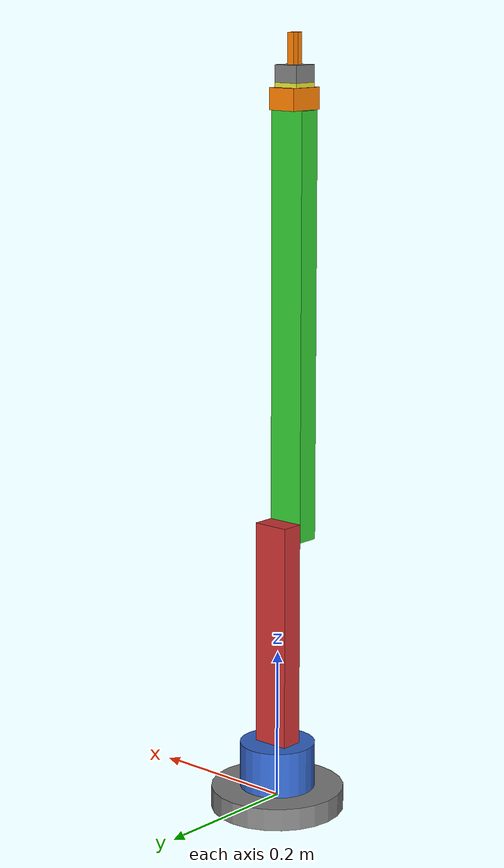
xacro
<?xml version="1.0"?>
<robot xmlns:xacro="http://www.ros.org/wiki/xacro" name="arm">
    <xacro:arg name="initial_positions_file" default="initial_positions.yaml" />
    <xacro:arg name="use_mock_hardware" default="true" />
    <xacro:arg name="hardware_plugin" default="mock_components/GenericSystem" />
    <xacro:arg name="port" default="/dev/ttyUSB0" />
    <xacro:arg name="baud_rate" default="1000000" />

    <!-- Import arm urdf file -->
    <xacro:include filename="$(find payloads)/config/arm_model.urdf" />

    <!-- Import control_xacro -->
    <xacro:include filename="arm.ros2_control.xacro" />

    <xacro:arm_ros2_control name="DynamixelServos" initial_positions_file="$(arg initial_positions_file)" use_mock_hardware="$(arg use_mock_hardware)" hardware_plugin="$(arg hardware_plugin)" port="$(arg port)" baud_rate="$(arg baud_rate)"/>

</robot>

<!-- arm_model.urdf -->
<robot name="arm">

  <material name="gray">   <color rgba="0.5 0.5 0.5 1.0"/></material>
  <material name="blue">   <color rgba="0.2 0.4 0.8 1.0"/></material>
  <material name="red">    <color rgba="0.8 0.2 0.2 1.0"/></material>
  <material name="green">  <color rgba="0.2 0.8 0.2 1.0"/></material>
  <material name="orange"> <color rgba="1.0 0.5 0.0 1.0"/></material>
  <material name="yellow"> <color rgba="0.9 0.9 0.2 1.0"/></material>
  <material name="purple"> <color rgba="0.6 0.2 0.8 1.0"/></material>

  <link name="plate">
    <visual>
      <geometry><cylinder length="0.029471" radius="0.0885"/></geometry>
      <material name="gray"/>
    </visual>
    <collision>
      <geometry><cylinder length="0.029471" radius="0.0885"/></geometry>
    </collision>
  </link>

  <link name="shoulder_base">
    <visual>
      <geometry><cylinder length="0.061043" radius="0.05"/></geometry>
      <origin rpy="0 0 0" xyz="0 0 0.0305215"/>
      <material name="blue"/>
    </visual>
    <collision>
      <geometry><cylinder length="0.061043" radius="0.05"/></geometry>
      <origin rpy="0 0 0" xyz="0 0 0.0305215"/>
    </collision>
    <inertial>
      <mass value="0.8"/>
      <origin xyz="0 0 0.0305215" rpy="0 0 0"/>
      <inertia ixx="0.002" ixy="0.0" ixz="0.0" iyy="0.002" iyz="0.0" izz="0.001"/>
    </inertial>
  </link>

  <joint name="shoulder_pan" type="revolute">
    <parent link="plate"/>
    <child link="shoulder_base"/>
    <origin xyz="0 0 0.0147355" rpy="0 0 0"/>
    <axis xyz="0 0 1"/>
    <limit lower="-31.4159" upper="31.4159" effort="10.0" velocity="3.0"/>
    <dynamics damping="0.1" friction="0.05"/>
  </joint>

  <link name="shoulder_arm">
    <visual>
      <geometry><box size="0.05 0.03 0.3"/></geometry>
      <origin xyz="0 0 0.15" rpy="0 0 0"/>
      <material name="red"/>
    </visual>
    <collision>
      <geometry><box size="0.05 0.03 0.3"/></geometry>
      <origin xyz="0 0 0.15" rpy="0 0 0"/>
    </collision>
    <inertial>
      <mass value="0.6"/>
      <origin xyz="0 0 0.15" rpy="0 0 0"/>
      <inertia ixx="0.0046" ixy="0.0" ixz="0.0" iyy="0.0047" iyz="0.0" izz="0.0003"/>
    </inertial>
  </link>

  <joint name="shoulder_tilt" type="revolute">
    <parent link="shoulder_base"/>
    <child link="shoulder_arm"/>
    <origin xyz="0 0 0.061043" rpy="0 0 0"/>
    <axis xyz="0 1 0"/>
    <limit lower="-1.57" upper="1.57" effort="10.0" velocity="2.0"/>
    <dynamics damping="0.1" friction="0.05"/>
  </joint>

  <link name="forearm">
    <visual>
      <geometry><box size="0.05 0.03 0.558"/></geometry>
      <origin xyz="0 0 0.279" rpy="0 0 0"/>
      <material name="green"/>
    </visual>
    <collision>
      <geometry><box size="0.05 0.03 0.558"/></geometry>
      <origin xyz="0 0 0.279" rpy="0 0 0"/>
    </collision>
    <inertial>
      <mass value="0.5"/>
      <origin xyz="0 0 0.279" rpy="0 0 0"/>
      <inertia ixx="0.013" ixy="0.0" ixz="0.0" iyy="0.013" iyz="0.0" izz="0.0002"/>
    </inertial>
  </link>

  <joint name="elbow" type="revolute">
    <parent link="shoulder_arm"/>
    <child link="forearm"/>
    <origin xyz="0 -0.03 0.275" rpy="0 0 0"/>
    <axis xyz="0 1 0"/>
    <limit lower="-3.14159" upper="3.14159" effort="8.0" velocity="2.0"/>
    <dynamics damping="0.1" friction="0.05"/>
  </joint>

  <link name="forearm_tip">
    <visual>
      <geometry><sphere radius="0.01"/></geometry>
      <material name="purple"/>
    </visual>
    <collision>
      <geometry><sphere radius="0.01"/></geometry>
    </collision>
    <inertial>
      <mass value="0.001"/>
      <origin xyz="0 0 0" rpy="0 0 0"/>
      <inertia ixx="0.000001" ixy="0.0" ixz="0.0" iyy="0.000001" iyz="0.0" izz="0.000001"/>
    </inertial>
  </link>

  <joint name="forearm_tip_joint" type="fixed">
    <parent link="forearm"/>
    <child link="forearm_tip"/>
    <origin xyz="0 0 0.558" rpy="0 0 0"/>
  </joint>

  <link name="wrist_pitch_link">
    <visual>
      <geometry><box size="0.04 0.05 0.028"/></geometry>
      <origin xyz="0 0 0.014" rpy="0 0 0"/>
      <material name="orange"/>
    </visual>
    <collision>
      <geometry><box size="0.04 0.05 0.028"/></geometry>
      <origin xyz="0 0 0.014" rpy="0 0 0"/>
    </collision>
    <inertial>
      <mass value="0.2"/>
      <origin xyz="0 0 0.014" rpy="0 0 0"/>
      <inertia ixx="0.0001" ixy="0.0" ixz="0.0" iyy="0.00001" iyz="0.0" izz="0.0001"/>
    </inertial>
  </link>

  <joint name="wrist_pitch" type="revolute">
    <parent link="forearm"/>
    <child link="wrist_pitch_link"/>
    <origin xyz="0 0 0.558" rpy="0 0 0"/>
    <axis xyz="0 1 0"/>
    <limit lower="-1.57" upper="1.57" effort="5.0" velocity="3.0"/>
    <dynamics damping="0.05" friction="0.02"/>
  </joint>

  <link name="wrist_roll_link">
    <visual>
      <geometry><box size="0.035 0.035 0.006"/></geometry>
      <origin xyz="0 0 0.003" rpy="0 0 0"/>
      <material name="yellow"/>
    </visual>
    <collision>
      <geometry><box size="0.035 0.035 0.006"/></geometry>
      <origin xyz="0 0 0.003" rpy="0 0 0"/>
    </collision>
    <inertial>
      <mass value="0.05"/>
      <origin xyz="0 0 0.003" rpy="0 0 0"/>
      <inertia ixx="0.00001" ixy="0.0" ixz="0.0" iyy="0.00001" iyz="0.0" izz="0.00001"/>
    </inertial>
  </link>

  <joint name="wrist_roll" type="revolute">
    <parent link="wrist_pitch_link"/>
    <child link="wrist_roll_link"/>
    <origin xyz="0 0 0.028" rpy="0 0 0"/>
    <axis xyz="0 0 1"/>
    <limit lower="-6.28318" upper="6.28318" effort="10.0" velocity="2.0"/>
    <dynamics damping="0.05" friction="0.02"/>
  </joint>

  <!-- Parallel-jaw gripper; gripper_base is the `arm` group tip. -->
  <link name="gripper_base">
    <visual>
      <geometry><box size="0.035 0.035 0.022"/></geometry>
      <origin xyz="0 0 0.011" rpy="0 0 0"/>
      <material name="gray"/>
    </visual>
    <collision>
      <geometry><box size="0.035 0.035 0.022"/></geometry>
      <origin xyz="0 0 0.011" rpy="0 0 0"/>
    </collision>
    <inertial>
      <mass value="0.05"/>
      <origin xyz="0 0 0.011" rpy="0 0 0"/>
      <inertia ixx="0.00001" ixy="0.0" ixz="0.0" iyy="0.00001" iyz="0.0" izz="0.00001"/>
    </inertial>
  </link>

  <joint name="gripper_mount" type="fixed">
    <parent link="wrist_roll_link"/>
    <child link="gripper_base"/>
    <origin xyz="0 0 0.006" rpy="0 0 0"/>
  </joint>

  <link name="left_finger">
    <visual>
      <geometry><box size="0.01 0.008 0.04"/></geometry>
      <origin xyz="0 0 0.02" rpy="0 0 0"/>
      <material name="orange"/>
    </visual>
    <collision>
      <geometry><box size="0.01 0.008 0.04"/></geometry>
      <origin xyz="0 0 0.02" rpy="0 0 0"/>
    </collision>
    <inertial>
      <mass value="0.012"/>
      <origin xyz="0 0 0.02" rpy="0 0 0"/>
      <inertia ixx="0.000002" ixy="0.0" ixz="0.0" iyy="0.000002" iyz="0.0" izz="0.0000002"/>
    </inertial>
  </link>

  <!-- Per-finger travel from closed; jaw gap is twice this. -->
  <joint name="left_finger_joint" type="prismatic">
    <parent link="gripper_base"/>
    <child link="left_finger"/>
    <origin xyz="0 0.004 0.022" rpy="0 0 0"/>
    <axis xyz="0 1 0"/>
    <limit lower="0.0" upper="0.015" effort="20.0" velocity="0.1"/>
    <dynamics damping="0.5" friction="0.1"/>
  </joint>

  <link name="right_finger">
    <visual>
      <geometry><box size="0.01 0.008 0.04"/></geometry>
      <origin xyz="0 0 0.02" rpy="0 0 0"/>
      <material name="orange"/>
    </visual>
    <collision>
      <geometry><box size="0.01 0.008 0.04"/></geometry>
      <origin xyz="0 0 0.02" rpy="0 0 0"/>
    </collision>
    <inertial>
      <mass value="0.012"/>
      <origin xyz="0 0 0.02" rpy="0 0 0"/>
      <inertia ixx="0.000002" ixy="0.0" ixz="0.0" iyy="0.000002" iyz="0.0" izz="0.0000002"/>
    </inertial>
  </link>

  <joint name="right_finger_joint" type="prismatic">
    <parent link="gripper_base"/>
    <child link="right_finger"/>
    <origin xyz="0 -0.004 0.022" rpy="0 0 0"/>
    <axis xyz="0 -1 0"/>
    <limit lower="0.0" upper="0.015" effort="20.0" velocity="0.1"/>
    <mimic joint="left_finger_joint" multiplier="1.0" offset="0.0"/>
    <dynamics damping="0.5" friction="0.1"/>
  </joint>

  <!-- TF-only frame at the grasp point between the fingertips. -->
  <link name="grasp_link"/>

  <joint name="grasp_frame" type="fixed">
    <parent link="gripper_base"/>
    <child link="grasp_link"/>
    <origin xyz="0 0 0.045" rpy="0 0 0"/>
  </joint>

</robot>
